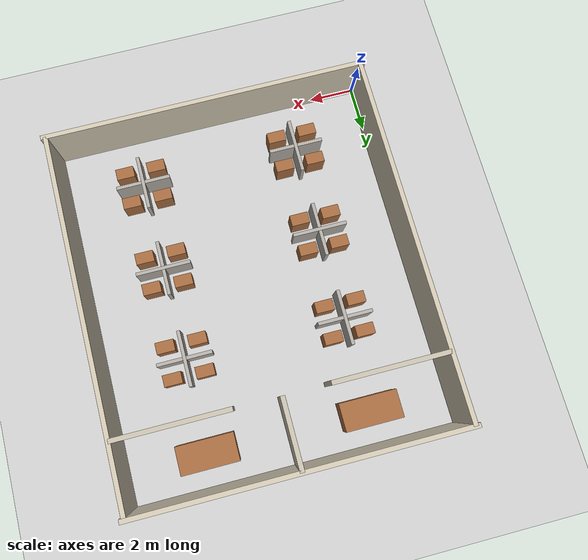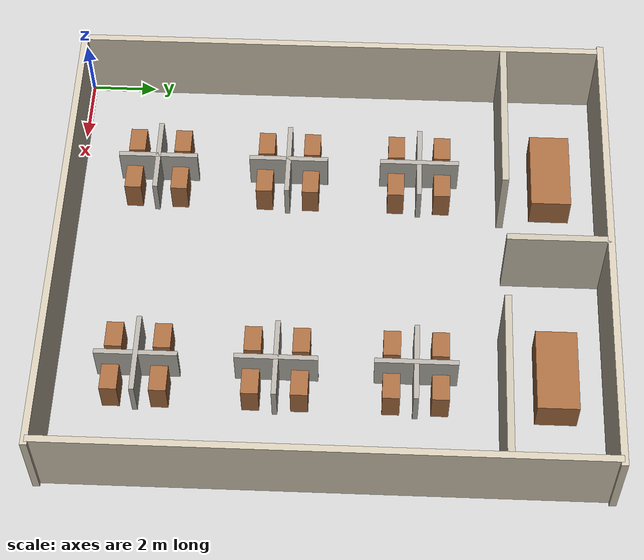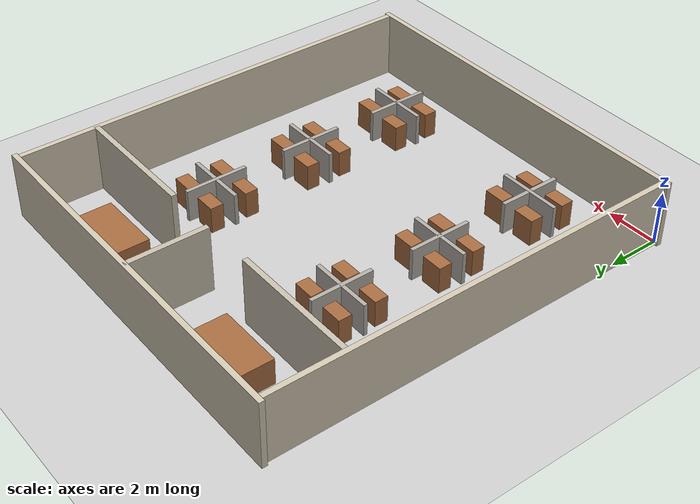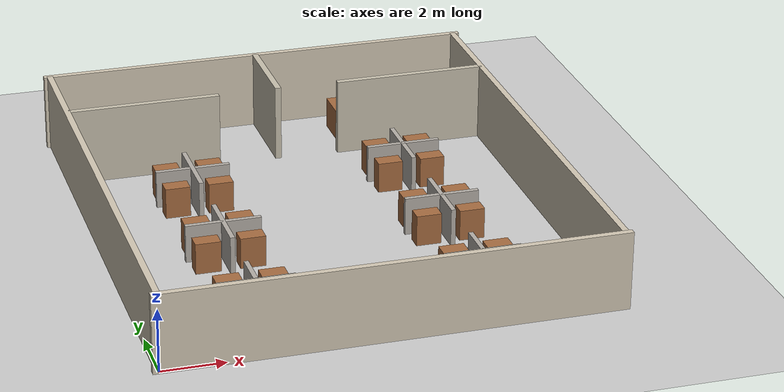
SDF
<?xml version="1.0" ?>
<sdf version="1.6">
  <world name="office_world">

    <physics type="ode">
      <real_time_update_rate>1000</real_time_update_rate>
      <max_step_size>0.001</max_step_size>
    </physics>

    <include><uri>model://sun</uri></include>
    <include><uri>model://ground_plane</uri></include>

    <!--  OUTER WALLS — 14m x 16m room    -->
    <!--  0.2m thick, 2.5m tall           -->

    <model name="wall_south">
      <static>true</static>
      <pose>7 0 1.25 0 0 0</pose>
      <link name="link">
        <collision name="c"><geometry><box><size>14.4 0.2 2.52</size></box></geometry></collision>
        <visual name="v"><geometry><box><size>14.4 0.2 2.52</size></box></geometry>
          <material><ambient>0.82 0.78 0.70 1</ambient><diffuse>0.82 0.78 0.70 1</diffuse></material></visual>
      </link>
    </model>

    <model name="wall_north">
      <static>true</static>
      <pose>7 16 1.25 0 0 0</pose>
      <link name="link">
        <collision name="c"><geometry><box><size>14.4 0.2 2.52</size></box></geometry></collision>
        <visual name="v"><geometry><box><size>14.4 0.2 2.52</size></box></geometry>
          <material><ambient>0.82 0.78 0.70 1</ambient><diffuse>0.82 0.78 0.70 1</diffuse></material></visual>
      </link>
    </model>

    <model name="wall_west">
      <static>true</static>
      <pose>0 8 1.25 0 0 0</pose>
      <link name="link">
        <collision name="c"><geometry><box><size>0.2 16.0 2.52</size></box></geometry></collision>
        <visual name="v"><geometry><box><size>0.2 16.0 2.52</size></box></geometry>
          <material><ambient>0.82 0.78 0.70 1</ambient><diffuse>0.82 0.78 0.70 1</diffuse></material></visual>
      </link>
    </model>

    <model name="wall_east">
      <static>true</static>
      <pose>14 8 1.25 0 0 0</pose>
      <link name="link">
        <collision name="c"><geometry><box><size>0.2 16.0 2.52</size></box></geometry></collision>
        <visual name="v"><geometry><box><size>0.2 16.0 2.52</size></box></geometry>
          <material><ambient>0.82 0.78 0.70 1</ambient><diffuse>0.82 0.78 0.70 1</diffuse></material></visual>
      </link>
    </model>

    <!--  MEETING ROOM WALLS (y=13 to 16) -->
    <!--  Two rooms, doorway in center    -->

    <model name="meeting_wall_left">
      <static>true</static>
      <pose>2.5 13 1.25 0 0 0</pose>
      <link name="link">
        <collision name="c"><geometry><box><size>5.0 0.2 2.52</size></box></geometry></collision>
        <visual name="v"><geometry><box><size>5.0 0.2 2.52</size></box></geometry>
          <material><ambient>0.78 0.75 0.68 1</ambient><diffuse>0.78 0.75 0.68 1</diffuse></material></visual>
      </link>
    </model>

    <model name="meeting_wall_right">
      <static>true</static>
      <pose>11.5 13 1.25 0 0 0</pose>
      <link name="link">
        <collision name="c"><geometry><box><size>5.0 0.2 2.52</size></box></geometry></collision>
        <visual name="v"><geometry><box><size>5.0 0.2 2.52</size></box></geometry>
          <material><ambient>0.78 0.75 0.68 1</ambient><diffuse>0.78 0.75 0.68 1</diffuse></material></visual>
      </link>
    </model>

    <model name="meeting_divider">
      <static>true</static>
      <pose>7 14.5 1.25 0 0 0</pose>
      <link name="link">
        <collision name="c"><geometry><box><size>0.2 3.0 2.52</size></box></geometry></collision>
        <visual name="v"><geometry><box><size>0.2 3.0 2.52</size></box></geometry>
          <material><ambient>0.78 0.75 0.68 1</ambient><diffuse>0.78 0.75 0.68 1</diffuse></material></visual>
      </link>
    </model>

    <!-- Meeting tables (solid blocks) -->
    <model name="meeting_table_left">
      <static>true</static>
      <pose>3.5 14.5 0.5 0 0 0</pose>
      <link name="link">
        <collision name="c"><geometry><box><size>2.5 1.2 1.0</size></box></geometry></collision>
        <visual name="v"><geometry><box><size>2.5 1.2 1.0</size></box></geometry>
          <material><ambient>0.55 0.36 0.22 1</ambient><diffuse>0.65 0.42 0.25 1</diffuse></material></visual>
      </link>
    </model>

    <model name="meeting_table_right">
      <static>true</static>
      <pose>10.5 14.5 0.5 0 0 0</pose>
      <link name="link">
        <collision name="c"><geometry><box><size>2.5 1.2 1.0</size></box></geometry></collision>
        <visual name="v"><geometry><box><size>2.5 1.2 1.0</size></box></geometry>
          <material><ambient>0.55 0.36 0.22 1</ambient><diffuse>0.65 0.42 0.25 1</diffuse></material></visual>
      </link>
    </model>

    <!--  CUBICLE CLUSTERS — 6 total (3 rows x 2 col) -->
    <!--  Each: cross partition + 4 solid desk blocks  -->
    <!--  Partition: 1.2m tall, 0.15m thick            -->
    <!--  Desks: 0.8 x 0.5 x 0.75m solid blocks       -->

    <!-- ===== CLUSTER 1: center (3.5, 2.5) ===== -->
    <model name="c1_part_h">
      <static>true</static>
      <pose>3.5 2.5 0.6 0 0 0</pose>
      <link name="link">
        <collision name="c"><geometry><box><size>2.4 0.15 1.22</size></box></geometry></collision>
        <visual name="v"><geometry><box><size>2.4 0.15 1.22</size></box></geometry>
          <material><ambient>0.65 0.63 0.60 1</ambient><diffuse>0.70 0.68 0.65 1</diffuse></material></visual>
      </link>
    </model>
    <model name="c1_part_v">
      <static>true</static>
      <pose>3.5 2.5 0.6 0 0 0</pose>
      <link name="link">
        <collision name="c"><geometry><box><size>0.15 2.4 1.22</size></box></geometry></collision>
        <visual name="v"><geometry><box><size>0.15 2.4 1.22</size></box></geometry>
          <material><ambient>0.65 0.63 0.60 1</ambient><diffuse>0.70 0.68 0.65 1</diffuse></material></visual>
      </link>
    </model>
    <model name="c1_desk_ne">
      <static>true</static>
      <pose>4.2 3.2 0.5 0 0 0</pose>
      <link name="link">
        <collision name="c"><geometry><box><size>0.8 0.5 1.0</size></box></geometry></collision>
        <visual name="v"><geometry><box><size>0.8 0.5 1.0</size></box></geometry>
          <material><ambient>0.55 0.36 0.22 1</ambient><diffuse>0.65 0.42 0.25 1</diffuse></material></visual>
      </link>
    </model>
    <model name="c1_desk_nw">
      <static>true</static>
      <pose>2.8 3.2 0.5 0 0 0</pose>
      <link name="link">
        <collision name="c"><geometry><box><size>0.8 0.5 1.0</size></box></geometry></collision>
        <visual name="v"><geometry><box><size>0.8 0.5 1.0</size></box></geometry>
          <material><ambient>0.55 0.36 0.22 1</ambient><diffuse>0.65 0.42 0.25 1</diffuse></material></visual>
      </link>
    </model>
    <model name="c1_desk_se">
      <static>true</static>
      <pose>4.2 1.8 0.5 0 0 0</pose>
      <link name="link">
        <collision name="c"><geometry><box><size>0.8 0.5 1.0</size></box></geometry></collision>
        <visual name="v"><geometry><box><size>0.8 0.5 1.0</size></box></geometry>
          <material><ambient>0.55 0.36 0.22 1</ambient><diffuse>0.65 0.42 0.25 1</diffuse></material></visual>
      </link>
    </model>
    <model name="c1_desk_sw">
      <static>true</static>
      <pose>2.8 1.8 0.5 0 0 0</pose>
      <link name="link">
        <collision name="c"><geometry><box><size>0.8 0.5 1.0</size></box></geometry></collision>
        <visual name="v"><geometry><box><size>0.8 0.5 1.0</size></box></geometry>
          <material><ambient>0.55 0.36 0.22 1</ambient><diffuse>0.65 0.42 0.25 1</diffuse></material></visual>
      </link>
    </model>

    <!-- ===== CLUSTER 2: center (10.5, 2.5) ===== -->
    <model name="c2_part_h">
      <static>true</static>
      <pose>10.5 2.5 0.6 0 0 0</pose>
      <link name="link">
        <collision name="c"><geometry><box><size>2.4 0.15 1.22</size></box></geometry></collision>
        <visual name="v"><geometry><box><size>2.4 0.15 1.22</size></box></geometry>
          <material><ambient>0.65 0.63 0.60 1</ambient><diffuse>0.70 0.68 0.65 1</diffuse></material></visual>
      </link>
    </model>
    <model name="c2_part_v">
      <static>true</static>
      <pose>10.5 2.5 0.6 0 0 0</pose>
      <link name="link">
        <collision name="c"><geometry><box><size>0.15 2.4 1.22</size></box></geometry></collision>
        <visual name="v"><geometry><box><size>0.15 2.4 1.22</size></box></geometry>
          <material><ambient>0.65 0.63 0.60 1</ambient><diffuse>0.70 0.68 0.65 1</diffuse></material></visual>
      </link>
    </model>
    <model name="c2_desk_ne"><static>true</static><pose>11.2 3.2 0.5 0 0 0</pose><link name="link"><collision name="c"><geometry><box><size>0.8 0.5 1.0</size></box></geometry></collision><visual name="v"><geometry><box><size>0.8 0.5 1.0</size></box></geometry><material><ambient>0.55 0.36 0.22 1</ambient><diffuse>0.65 0.42 0.25 1</diffuse></material></visual></link></model>
    <model name="c2_desk_nw"><static>true</static><pose>9.8 3.2 0.5 0 0 0</pose><link name="link"><collision name="c"><geometry><box><size>0.8 0.5 1.0</size></box></geometry></collision><visual name="v"><geometry><box><size>0.8 0.5 1.0</size></box></geometry><material><ambient>0.55 0.36 0.22 1</ambient><diffuse>0.65 0.42 0.25 1</diffuse></material></visual></link></model>
    <model name="c2_desk_se"><static>true</static><pose>11.2 1.8 0.5 0 0 0</pose><link name="link"><collision name="c"><geometry><box><size>0.8 0.5 1.0</size></box></geometry></collision><visual name="v"><geometry><box><size>0.8 0.5 1.0</size></box></geometry><material><ambient>0.55 0.36 0.22 1</ambient><diffuse>0.65 0.42 0.25 1</diffuse></material></visual></link></model>
    <model name="c2_desk_sw"><static>true</static><pose>9.8 1.8 0.5 0 0 0</pose><link name="link"><collision name="c"><geometry><box><size>0.8 0.5 1.0</size></box></geometry></collision><visual name="v"><geometry><box><size>0.8 0.5 1.0</size></box></geometry><material><ambient>0.55 0.36 0.22 1</ambient><diffuse>0.65 0.42 0.25 1</diffuse></material></visual></link></model>

    <!-- ===== CLUSTER 3: center (3.5, 6.5) ===== -->
    <model name="c3_part_h">
      <static>true</static>
      <pose>3.5 6.5 0.6 0 0 0</pose>
      <link name="link">
        <collision name="c"><geometry><box><size>2.4 0.15 1.22</size></box></geometry></collision>
        <visual name="v"><geometry><box><size>2.4 0.15 1.22</size></box></geometry>
          <material><ambient>0.65 0.63 0.60 1</ambient><diffuse>0.70 0.68 0.65 1</diffuse></material></visual>
      </link>
    </model>
    <model name="c3_part_v">
      <static>true</static>
      <pose>3.5 6.5 0.6 0 0 0</pose>
      <link name="link">
        <collision name="c"><geometry><box><size>0.15 2.4 1.22</size></box></geometry></collision>
        <visual name="v"><geometry><box><size>0.15 2.4 1.22</size></box></geometry>
          <material><ambient>0.65 0.63 0.60 1</ambient><diffuse>0.70 0.68 0.65 1</diffuse></material></visual>
      </link>
    </model>
    <model name="c3_desk_ne"><static>true</static><pose>4.2 7.2 0.5 0 0 0</pose><link name="link"><collision name="c"><geometry><box><size>0.8 0.5 1.0</size></box></geometry></collision><visual name="v"><geometry><box><size>0.8 0.5 1.0</size></box></geometry><material><ambient>0.55 0.36 0.22 1</ambient><diffuse>0.65 0.42 0.25 1</diffuse></material></visual></link></model>
    <model name="c3_desk_nw"><static>true</static><pose>2.8 7.2 0.5 0 0 0</pose><link name="link"><collision name="c"><geometry><box><size>0.8 0.5 1.0</size></box></geometry></collision><visual name="v"><geometry><box><size>0.8 0.5 1.0</size></box></geometry><material><ambient>0.55 0.36 0.22 1</ambient><diffuse>0.65 0.42 0.25 1</diffuse></material></visual></link></model>
    <model name="c3_desk_se"><static>true</static><pose>4.2 5.8 0.5 0 0 0</pose><link name="link"><collision name="c"><geometry><box><size>0.8 0.5 1.0</size></box></geometry></collision><visual name="v"><geometry><box><size>0.8 0.5 1.0</size></box></geometry><material><ambient>0.55 0.36 0.22 1</ambient><diffuse>0.65 0.42 0.25 1</diffuse></material></visual></link></model>
    <model name="c3_desk_sw"><static>true</static><pose>2.8 5.8 0.5 0 0 0</pose><link name="link"><collision name="c"><geometry><box><size>0.8 0.5 1.0</size></box></geometry></collision><visual name="v"><geometry><box><size>0.8 0.5 1.0</size></box></geometry><material><ambient>0.55 0.36 0.22 1</ambient><diffuse>0.65 0.42 0.25 1</diffuse></material></visual></link></model>

    <!-- ===== CLUSTER 4: center (10.5, 6.5) ===== -->
    <model name="c4_part_h">
      <static>true</static>
      <pose>10.5 6.5 0.6 0 0 0</pose>
      <link name="link">
        <collision name="c"><geometry><box><size>2.4 0.15 1.22</size></box></geometry></collision>
        <visual name="v"><geometry><box><size>2.4 0.15 1.22</size></box></geometry>
          <material><ambient>0.65 0.63 0.60 1</ambient><diffuse>0.70 0.68 0.65 1</diffuse></material></visual>
      </link>
    </model>
    <model name="c4_part_v">
      <static>true</static>
      <pose>10.5 6.5 0.6 0 0 0</pose>
      <link name="link">
        <collision name="c"><geometry><box><size>0.15 2.4 1.22</size></box></geometry></collision>
        <visual name="v"><geometry><box><size>0.15 2.4 1.22</size></box></geometry>
          <material><ambient>0.65 0.63 0.60 1</ambient><diffuse>0.70 0.68 0.65 1</diffuse></material></visual>
      </link>
    </model>
    <model name="c4_desk_ne"><static>true</static><pose>11.2 7.2 0.5 0 0 0</pose><link name="link"><collision name="c"><geometry><box><size>0.8 0.5 1.0</size></box></geometry></collision><visual name="v"><geometry><box><size>0.8 0.5 1.0</size></box></geometry><material><ambient>0.55 0.36 0.22 1</ambient><diffuse>0.65 0.42 0.25 1</diffuse></material></visual></link></model>
    <model name="c4_desk_nw"><static>true</static><pose>9.8 7.2 0.5 0 0 0</pose><link name="link"><collision name="c"><geometry><box><size>0.8 0.5 1.0</size></box></geometry></collision><visual name="v"><geometry><box><size>0.8 0.5 1.0</size></box></geometry><material><ambient>0.55 0.36 0.22 1</ambient><diffuse>0.65 0.42 0.25 1</diffuse></material></visual></link></model>
    <model name="c4_desk_se"><static>true</static><pose>11.2 5.8 0.5 0 0 0</pose><link name="link"><collision name="c"><geometry><box><size>0.8 0.5 1.0</size></box></geometry></collision><visual name="v"><geometry><box><size>0.8 0.5 1.0</size></box></geometry><material><ambient>0.55 0.36 0.22 1</ambient><diffuse>0.65 0.42 0.25 1</diffuse></material></visual></link></model>
    <model name="c4_desk_sw"><static>true</static><pose>9.8 5.8 0.5 0 0 0</pose><link name="link"><collision name="c"><geometry><box><size>0.8 0.5 1.0</size></box></geometry></collision><visual name="v"><geometry><box><size>0.8 0.5 1.0</size></box></geometry><material><ambient>0.55 0.36 0.22 1</ambient><diffuse>0.65 0.42 0.25 1</diffuse></material></visual></link></model>

    <!-- ===== CLUSTER 5: center (3.5, 10.5) ===== -->
    <model name="c5_part_h">
      <static>true</static>
      <pose>3.5 10.5 0.6 0 0 0</pose>
      <link name="link">
        <collision name="c"><geometry><box><size>2.4 0.15 1.22</size></box></geometry></collision>
        <visual name="v"><geometry><box><size>2.4 0.15 1.22</size></box></geometry>
          <material><ambient>0.65 0.63 0.60 1</ambient><diffuse>0.70 0.68 0.65 1</diffuse></material></visual>
      </link>
    </model>
    <model name="c5_part_v">
      <static>true</static>
      <pose>3.5 10.5 0.6 0 0 0</pose>
      <link name="link">
        <collision name="c"><geometry><box><size>0.15 2.4 1.22</size></box></geometry></collision>
        <visual name="v"><geometry><box><size>0.15 2.4 1.22</size></box></geometry>
          <material><ambient>0.65 0.63 0.60 1</ambient><diffuse>0.70 0.68 0.65 1</diffuse></material></visual>
      </link>
    </model>
    <model name="c5_desk_ne"><static>true</static><pose>4.2 11.2 0.5 0 0 0</pose><link name="link"><collision name="c"><geometry><box><size>0.8 0.5 1.0</size></box></geometry></collision><visual name="v"><geometry><box><size>0.8 0.5 1.0</size></box></geometry><material><ambient>0.55 0.36 0.22 1</ambient><diffuse>0.65 0.42 0.25 1</diffuse></material></visual></link></model>
    <model name="c5_desk_nw"><static>true</static><pose>2.8 11.2 0.5 0 0 0</pose><link name="link"><collision name="c"><geometry><box><size>0.8 0.5 1.0</size></box></geometry></collision><visual name="v"><geometry><box><size>0.8 0.5 1.0</size></box></geometry><material><ambient>0.55 0.36 0.22 1</ambient><diffuse>0.65 0.42 0.25 1</diffuse></material></visual></link></model>
    <model name="c5_desk_se"><static>true</static><pose>4.2 9.8 0.5 0 0 0</pose><link name="link"><collision name="c"><geometry><box><size>0.8 0.5 1.0</size></box></geometry></collision><visual name="v"><geometry><box><size>0.8 0.5 1.0</size></box></geometry><material><ambient>0.55 0.36 0.22 1</ambient><diffuse>0.65 0.42 0.25 1</diffuse></material></visual></link></model>
    <model name="c5_desk_sw"><static>true</static><pose>2.8 9.8 0.5 0 0 0</pose><link name="link"><collision name="c"><geometry><box><size>0.8 0.5 1.0</size></box></geometry></collision><visual name="v"><geometry><box><size>0.8 0.5 1.0</size></box></geometry><material><ambient>0.55 0.36 0.22 1</ambient><diffuse>0.65 0.42 0.25 1</diffuse></material></visual></link></model>

    <!-- ===== CLUSTER 6: center (10.5, 10.5) ===== -->
    <model name="c6_part_h">
      <static>true</static>
      <pose>10.5 10.5 0.6 0 0 0</pose>
      <link name="link">
        <collision name="c"><geometry><box><size>2.4 0.15 1.22</size></box></geometry></collision>
        <visual name="v"><geometry><box><size>2.4 0.15 1.22</size></box></geometry>
          <material><ambient>0.65 0.63 0.60 1</ambient><diffuse>0.70 0.68 0.65 1</diffuse></material></visual>
      </link>
    </model>
    <model name="c6_part_v">
      <static>true</static>
      <pose>10.5 10.5 0.6 0 0 0</pose>
      <link name="link">
        <collision name="c"><geometry><box><size>0.15 2.4 1.22</size></box></geometry></collision>
        <visual name="v"><geometry><box><size>0.15 2.4 1.22</size></box></geometry>
          <material><ambient>0.65 0.63 0.60 1</ambient><diffuse>0.70 0.68 0.65 1</diffuse></material></visual>
      </link>
    </model>
    <model name="c6_desk_ne"><static>true</static><pose>11.2 11.2 0.5 0 0 0</pose><link name="link"><collision name="c"><geometry><box><size>0.8 0.5 1.0</size></box></geometry></collision><visual name="v"><geometry><box><size>0.8 0.5 1.0</size></box></geometry><material><ambient>0.55 0.36 0.22 1</ambient><diffuse>0.65 0.42 0.25 1</diffuse></material></visual></link></model>
    <model name="c6_desk_nw"><static>true</static><pose>9.8 11.2 0.5 0 0 0</pose><link name="link"><collision name="c"><geometry><box><size>0.8 0.5 1.0</size></box></geometry></collision><visual name="v"><geometry><box><size>0.8 0.5 1.0</size></box></geometry><material><ambient>0.55 0.36 0.22 1</ambient><diffuse>0.65 0.42 0.25 1</diffuse></material></visual></link></model>
    <model name="c6_desk_se"><static>true</static><pose>11.2 9.8 0.5 0 0 0</pose><link name="link"><collision name="c"><geometry><box><size>0.8 0.5 1.0</size></box></geometry></collision><visual name="v"><geometry><box><size>0.8 0.5 1.0</size></box></geometry><material><ambient>0.55 0.36 0.22 1</ambient><diffuse>0.65 0.42 0.25 1</diffuse></material></visual></link></model>
    <model name="c6_desk_sw"><static>true</static><pose>9.8 9.8 0.5 0 0 0</pose><link name="link"><collision name="c"><geometry><box><size>0.8 0.5 1.0</size></box></geometry></collision><visual name="v"><geometry><box><size>0.8 0.5 1.0</size></box></geometry><material><ambient>0.55 0.36 0.22 1</ambient><diffuse>0.65 0.42 0.25 1</diffuse></material></visual></link></model>

  </world>
</sdf>
